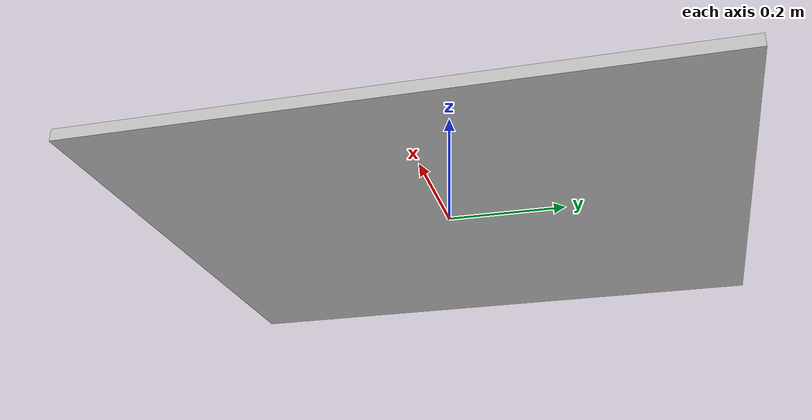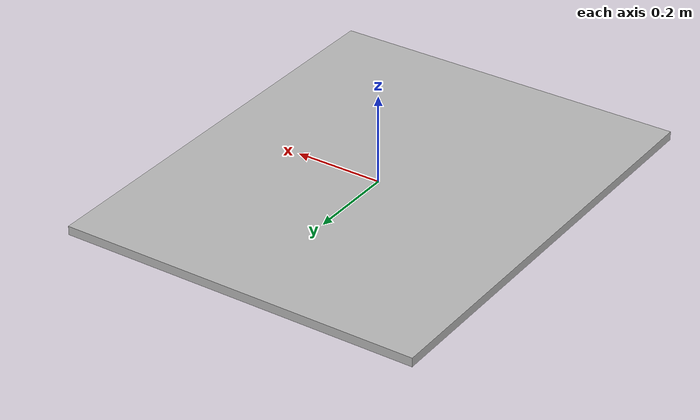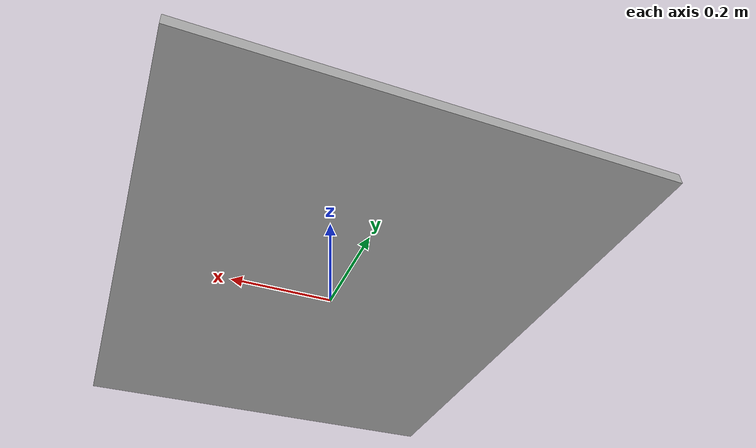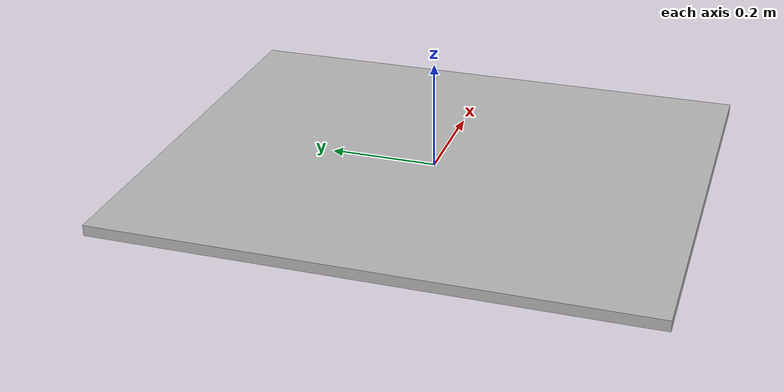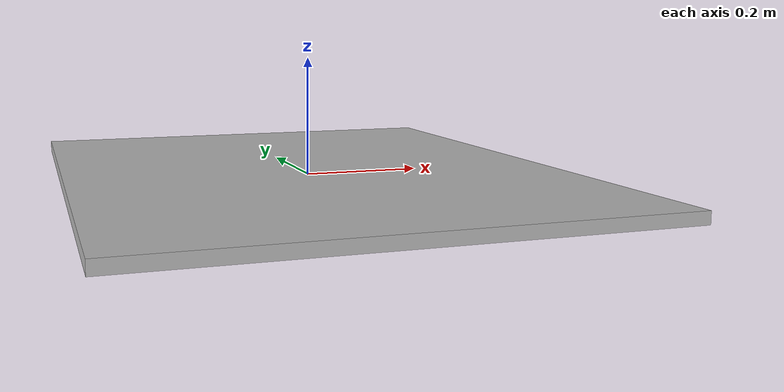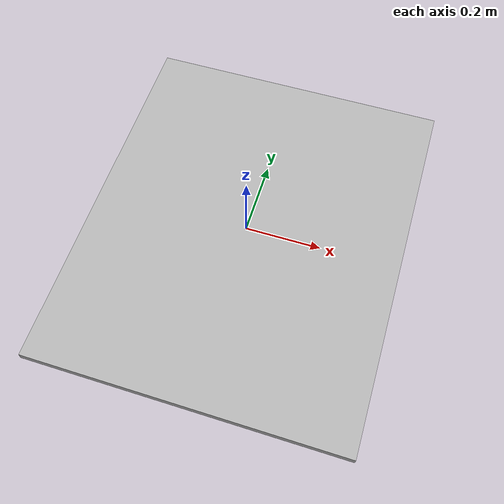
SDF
<?xml version="1.0"?>
<sdf version="1.4">
<model name="o_kniha">
  <static>true</static>
    <link name="link">
      <visual name="visual">
        <cast_shadows>false</cast_shadows>
        <geometry>
          <mesh>
            <uri>model://o_kniha/meshes/o_kniha.dae</uri>
          </mesh>
        </geometry>
        <material>
          <script>
			<uri>model://o_kniha/materials/scripts</uri>
			<uri>model://o_kniha/materials/textures</uri>
            <name>o_kniha/Image</name>
          </script>
        </material>
      </visual>
    </link>
  </model>
</sdf>
